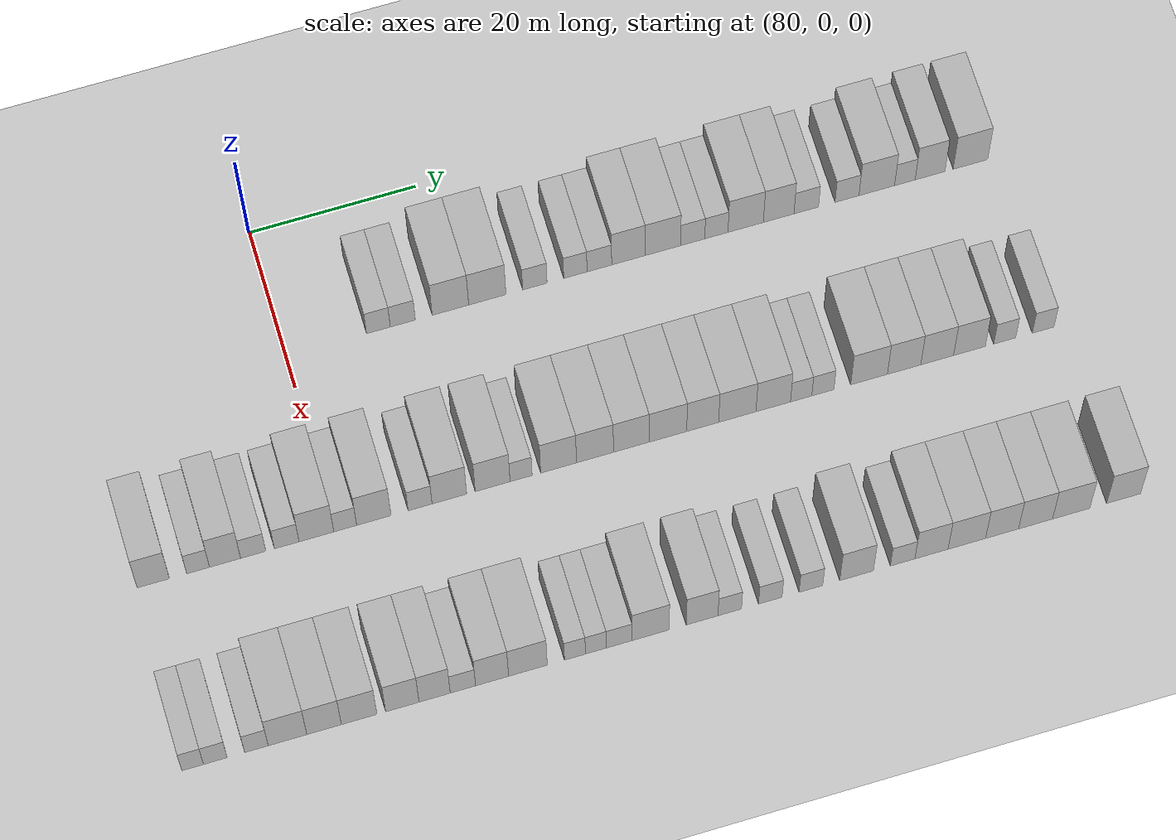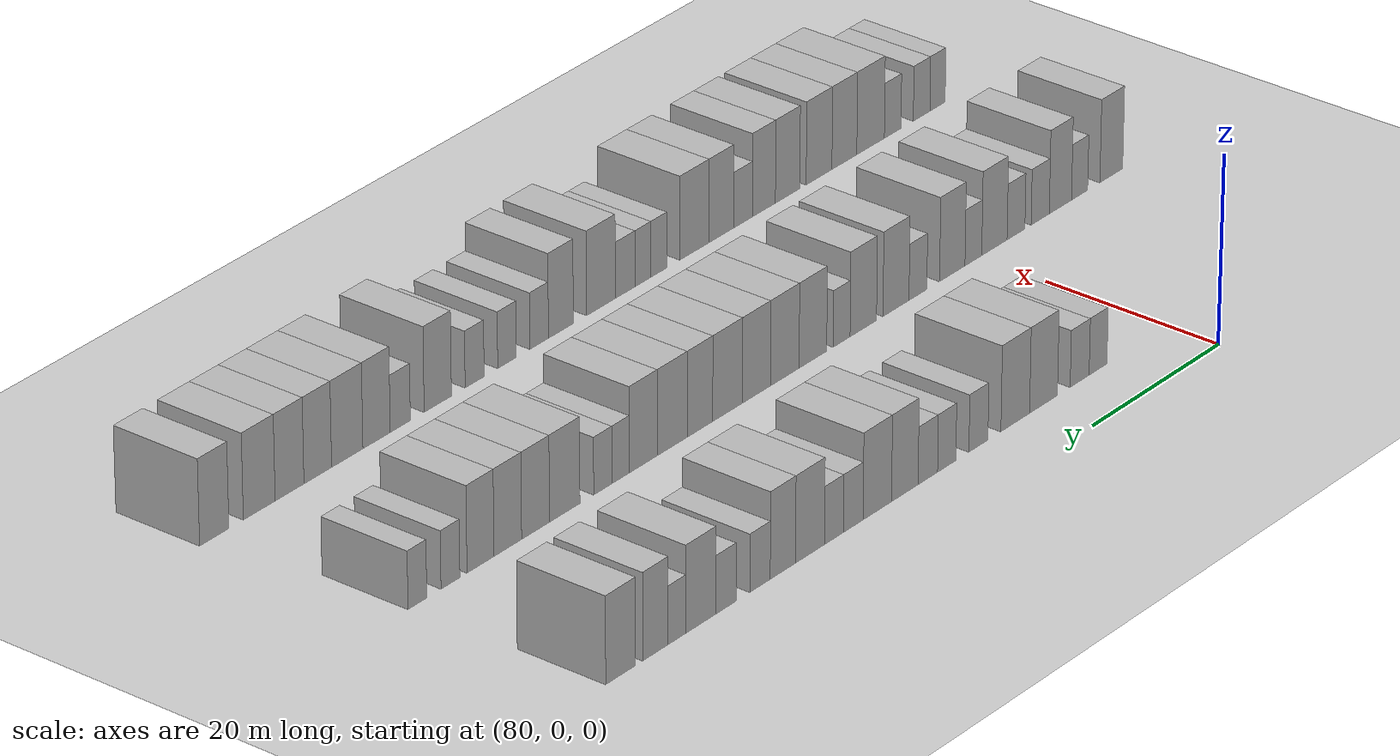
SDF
<sdf version="1.6">
 <world name="default">
  <include>
   <name>ground_plane_2</name>
   <uri>model://HANNAS_ground_plane</uri>
   <pose>100 0 0  0 0 0</pose>
  </include>
  <model name="building_654">
   <static>1</static>
   <pose>91.0000 10.9560 0 0.000000 0.000000 0.000000</pose>
   <link name="link">
    <pose>0 0 3.00 0 0 0</pose>
    <collision name="collision"><geometry><box><size>10.0000 2.8194 6.0000</size></box></geometry></collision>
    <visual name="visual">
     <cast_shadows>0</cast_shadows>
     <geometry><box><size>10.0000 2.8194 6.0000</size></box></geometry>
     <material>
      <script>
       <uri>model://HANNAS_wall/materials/scripts</uri>
       <uri>model://HANNAS_wall/materials/textures</uri>
       <name>vrc/HANNAS_wall</name>
      </script>
     </material>
    </visual>
   </link>
  </model>
  <model name="building_655">
   <static>1</static>
   <pose>91.0000 13.8556 0 0.000000 0.000000 0.000000</pose>
   <link name="link">
    <pose>0 0 3.00 0 0 0</pose>
    <collision name="collision"><geometry><box><size>10.0000 2.9799 6.0000</size></box></geometry></collision>
    <visual name="visual">
     <cast_shadows>0</cast_shadows>
     <geometry><box><size>10.0000 2.9799 6.0000</size></box></geometry>
     <material>
      <script>
       <uri>model://HANNAS_wall/materials/scripts</uri>
       <uri>model://HANNAS_wall/materials/textures</uri>
       <name>vrc/HANNAS_wall</name>
      </script>
     </material>
    </visual>
   </link>
  </model>
  <model name="building_656">
   <static>1</static>
   <pose>91.0000 19.5198 0 0.000000 0.000000 0.000000</pose>
   <link name="link">
    <pose>0 0 4.50 0 0 0</pose>
    <collision name="collision"><geometry><box><size>10.0000 4.3485 9.0000</size></box></geometry></collision>
    <visual name="visual">
     <cast_shadows>0</cast_shadows>
     <geometry><box><size>10.0000 4.3485 9.0000</size></box></geometry>
     <material>
      <script>
       <uri>model://HANNAS_wall/materials/scripts</uri>
       <uri>model://HANNAS_wall/materials/textures</uri>
       <name>vrc/HANNAS_wall</name>
      </script>
     </material>
    </visual>
   </link>
  </model>
  <model name="building_657">
   <static>1</static>
   <pose>91.0000 23.9176 0 0.000000 0.000000 0.000000</pose>
   <link name="link">
    <pose>0 0 4.50 0 0 0</pose>
    <collision name="collision"><geometry><box><size>10.0000 4.4471 9.0000</size></box></geometry></collision>
    <visual name="visual">
     <cast_shadows>0</cast_shadows>
     <geometry><box><size>10.0000 4.4471 9.0000</size></box></geometry>
     <material>
      <script>
       <uri>model://HANNAS_wall/materials/scripts</uri>
       <uri>model://HANNAS_wall/materials/textures</uri>
       <name>vrc/HANNAS_wall</name>
      </script>
     </material>
    </visual>
   </link>
  </model>
  <model name="building_658">
   <static>1</static>
   <pose>91.0000 29.5985 0 0.000000 0.000000 0.000000</pose>
   <link name="link">
    <pose>0 0 3.00 0 0 0</pose>
    <collision name="collision"><geometry><box><size>10.0000 2.9148 6.0000</size></box></geometry></collision>
    <visual name="visual">
     <cast_shadows>0</cast_shadows>
     <geometry><box><size>10.0000 2.9148 6.0000</size></box></geometry>
     <material>
      <script>
       <uri>model://HANNAS_wall/materials/scripts</uri>
       <uri>model://HANNAS_wall/materials/textures</uri>
       <name>vrc/HANNAS_wall</name>
      </script>
     </material>
    </visual>
   </link>
  </model>
  <model name="building_659">
   <static>1</static>
   <pose>91.0000 34.4473 0 0.000000 0.000000 0.000000</pose>
   <link name="link">
    <pose>0 0 3.00 0 0 0</pose>
    <collision name="collision"><geometry><box><size>10.0000 2.7828 6.0000</size></box></geometry></collision>
    <visual name="visual">
     <cast_shadows>0</cast_shadows>
     <geometry><box><size>10.0000 2.7828 6.0000</size></box></geometry>
     <material>
      <script>
       <uri>model://HANNAS_wall/materials/scripts</uri>
       <uri>model://HANNAS_wall/materials/textures</uri>
       <name>vrc/HANNAS_wall</name>
      </script>
     </material>
    </visual>
   </link>
  </model>
  <model name="building_660">
   <static>1</static>
   <pose>91.0000 37.3197 0 0.000000 0.000000 0.000000</pose>
   <link name="link">
    <pose>0 0 3.00 0 0 0</pose>
    <collision name="collision"><geometry><box><size>10.0000 2.9619 6.0000</size></box></geometry></collision>
    <visual name="visual">
     <cast_shadows>0</cast_shadows>
     <geometry><box><size>10.0000 2.9619 6.0000</size></box></geometry>
     <material>
      <script>
       <uri>model://HANNAS_wall/materials/scripts</uri>
       <uri>model://HANNAS_wall/materials/textures</uri>
       <name>vrc/HANNAS_wall</name>
      </script>
     </material>
    </visual>
   </link>
  </model>
  <model name="building_661">
   <static>1</static>
   <pose>91.0000 40.8022 0 0.000000 0.000000 0.000000</pose>
   <link name="link">
    <pose>0 0 4.50 0 0 0</pose>
    <collision name="collision"><geometry><box><size>10.0000 4.0031 9.0000</size></box></geometry></collision>
    <visual name="visual">
     <cast_shadows>0</cast_shadows>
     <geometry><box><size>10.0000 4.0031 9.0000</size></box></geometry>
     <material>
      <script>
       <uri>model://HANNAS_wall/materials/scripts</uri>
       <uri>model://HANNAS_wall/materials/textures</uri>
       <name>vrc/HANNAS_wall</name>
      </script>
     </material>
    </visual>
   </link>
  </model>
  <model name="building_662">
   <static>1</static>
   <pose>91.0000 44.9374 0 0.000000 0.000000 0.000000</pose>
   <link name="link">
    <pose>0 0 4.50 0 0 0</pose>
    <collision name="collision"><geometry><box><size>10.0000 4.2671 9.0000</size></box></geometry></collision>
    <visual name="visual">
     <cast_shadows>0</cast_shadows>
     <geometry><box><size>10.0000 4.2671 9.0000</size></box></geometry>
     <material>
      <script>
       <uri>model://HANNAS_wall/materials/scripts</uri>
       <uri>model://HANNAS_wall/materials/textures</uri>
       <name>vrc/HANNAS_wall</name>
      </script>
     </material>
    </visual>
   </link>
  </model>
  <model name="building_663">
   <static>1</static>
   <pose>91.0000 48.5346 0 0.000000 0.000000 0.000000</pose>
   <link name="link">
    <pose>0 0 3.00 0 0 0</pose>
    <collision name="collision"><geometry><box><size>10.0000 2.9274 6.0000</size></box></geometry></collision>
    <visual name="visual">
     <cast_shadows>0</cast_shadows>
     <geometry><box><size>10.0000 2.9274 6.0000</size></box></geometry>
     <material>
      <script>
       <uri>model://HANNAS_wall/materials/scripts</uri>
       <uri>model://HANNAS_wall/materials/textures</uri>
       <name>vrc/HANNAS_wall</name>
      </script>
     </material>
    </visual>
   </link>
  </model>
  <model name="building_664">
   <static>1</static>
   <pose>91.0000 51.3972 0 0.000000 0.000000 0.000000</pose>
   <link name="link">
    <pose>0 0 3.00 0 0 0</pose>
    <collision name="collision"><geometry><box><size>10.0000 2.7978 6.0000</size></box></geometry></collision>
    <visual name="visual">
     <cast_shadows>0</cast_shadows>
     <geometry><box><size>10.0000 2.7978 6.0000</size></box></geometry>
     <material>
      <script>
       <uri>model://HANNAS_wall/materials/scripts</uri>
       <uri>model://HANNAS_wall/materials/textures</uri>
       <name>vrc/HANNAS_wall</name>
      </script>
     </material>
    </visual>
   </link>
  </model>
  <model name="building_665">
   <static>1</static>
   <pose>91.0000 54.9342 0 0.000000 0.000000 0.000000</pose>
   <link name="link">
    <pose>0 0 4.50 0 0 0</pose>
    <collision name="collision"><geometry><box><size>10.0000 4.2761 9.0000</size></box></geometry></collision>
    <visual name="visual">
     <cast_shadows>0</cast_shadows>
     <geometry><box><size>10.0000 4.2761 9.0000</size></box></geometry>
     <material>
      <script>
       <uri>model://HANNAS_wall/materials/scripts</uri>
       <uri>model://HANNAS_wall/materials/textures</uri>
       <name>vrc/HANNAS_wall</name>
      </script>
     </material>
    </visual>
   </link>
  </model>
  <model name="building_666">
   <static>1</static>
   <pose>91.0000 58.9236 0 0.000000 0.000000 0.000000</pose>
   <link name="link">
    <pose>0 0 4.50 0 0 0</pose>
    <collision name="collision"><geometry><box><size>10.0000 3.7027 9.0000</size></box></geometry></collision>
    <visual name="visual">
     <cast_shadows>0</cast_shadows>
     <geometry><box><size>10.0000 3.7027 9.0000</size></box></geometry>
     <material>
      <script>
       <uri>model://HANNAS_wall/materials/scripts</uri>
       <uri>model://HANNAS_wall/materials/textures</uri>
       <name>vrc/HANNAS_wall</name>
      </script>
     </material>
    </visual>
   </link>
  </model>
  <model name="building_667">
   <static>1</static>
   <pose>91.0000 62.2617 0 0.000000 0.000000 0.000000</pose>
   <link name="link">
    <pose>0 0 3.00 0 0 0</pose>
    <collision name="collision"><geometry><box><size>10.0000 2.9735 6.0000</size></box></geometry></collision>
    <visual name="visual">
     <cast_shadows>0</cast_shadows>
     <geometry><box><size>10.0000 2.9735 6.0000</size></box></geometry>
     <material>
      <script>
       <uri>model://HANNAS_wall/materials/scripts</uri>
       <uri>model://HANNAS_wall/materials/textures</uri>
       <name>vrc/HANNAS_wall</name>
      </script>
     </material>
    </visual>
   </link>
  </model>
  <model name="building_668">
   <static>1</static>
   <pose>91.0000 67.1979 0 0.000000 0.000000 0.000000</pose>
   <link name="link">
    <pose>0 0 3.00 0 0 0</pose>
    <collision name="collision"><geometry><box><size>10.0000 2.8990 6.0000</size></box></geometry></collision>
    <visual name="visual">
     <cast_shadows>0</cast_shadows>
     <geometry><box><size>10.0000 2.8990 6.0000</size></box></geometry>
     <material>
      <script>
       <uri>model://HANNAS_wall/materials/scripts</uri>
       <uri>model://HANNAS_wall/materials/textures</uri>
       <name>vrc/HANNAS_wall</name>
      </script>
     </material>
    </visual>
   </link>
  </model>
  <model name="building_669">
   <static>1</static>
   <pose>91.0000 70.8143 0 0.000000 0.000000 0.000000</pose>
   <link name="link">
    <pose>0 0 4.50 0 0 0</pose>
    <collision name="collision"><geometry><box><size>10.0000 4.3337 9.0000</size></box></geometry></collision>
    <visual name="visual">
     <cast_shadows>0</cast_shadows>
     <geometry><box><size>10.0000 4.3337 9.0000</size></box></geometry>
     <material>
      <script>
       <uri>model://HANNAS_wall/materials/scripts</uri>
       <uri>model://HANNAS_wall/materials/textures</uri>
       <name>vrc/HANNAS_wall</name>
      </script>
     </material>
    </visual>
   </link>
  </model>
  <model name="building_670">
   <static>1</static>
   <pose>91.0000 74.2350 0 0.000000 0.000000 0.000000</pose>
   <link name="link">
    <pose>0 0 3.00 0 0 0</pose>
    <collision name="collision"><geometry><box><size>10.0000 2.5077 6.0000</size></box></geometry></collision>
    <visual name="visual">
     <cast_shadows>0</cast_shadows>
     <geometry><box><size>10.0000 2.5077 6.0000</size></box></geometry>
     <material>
      <script>
       <uri>model://HANNAS_wall/materials/scripts</uri>
       <uri>model://HANNAS_wall/materials/textures</uri>
       <name>vrc/HANNAS_wall</name>
      </script>
     </material>
    </visual>
   </link>
  </model>
  <model name="building_671">
   <static>1</static>
   <pose>91.0000 77.3013 0 0.000000 0.000000 0.000000</pose>
   <link name="link">
    <pose>0 0 4.50 0 0 0</pose>
    <collision name="collision"><geometry><box><size>10.0000 3.6250 9.0000</size></box></geometry></collision>
    <visual name="visual">
     <cast_shadows>0</cast_shadows>
     <geometry><box><size>10.0000 3.6250 9.0000</size></box></geometry>
     <material>
      <script>
       <uri>model://HANNAS_wall/materials/scripts</uri>
       <uri>model://HANNAS_wall/materials/textures</uri>
       <name>vrc/HANNAS_wall</name>
      </script>
     </material>
    </visual>
   </link>
  </model>
  <model name="building_672">
   <static>1</static>
   <pose>91.0000 82.2211 0 0.000000 0.000000 0.000000</pose>
   <link name="link">
    <pose>0 0 4.50 0 0 0</pose>
    <collision name="collision"><geometry><box><size>10.0000 4.2145 9.0000</size></box></geometry></collision>
    <visual name="visual">
     <cast_shadows>0</cast_shadows>
     <geometry><box><size>10.0000 4.2145 9.0000</size></box></geometry>
     <material>
      <script>
       <uri>model://HANNAS_wall/materials/scripts</uri>
       <uri>model://HANNAS_wall/materials/textures</uri>
       <name>vrc/HANNAS_wall</name>
      </script>
     </material>
    </visual>
   </link>
  </model>
  <model name="building_836">
   <static>1</static>
   <pose>113.0000 -21.4664 0 0.000000 0.000000 0.000000</pose>
   <link name="link">
    <pose>0 0 4.50 0 0 0</pose>
    <collision name="collision"><geometry><box><size>10.0000 3.7477 9.0000</size></box></geometry></collision>
    <visual name="visual">
     <cast_shadows>0</cast_shadows>
     <geometry><box><size>10.0000 3.7477 9.0000</size></box></geometry>
     <material>
      <script>
       <uri>model://HANNAS_wall/materials/scripts</uri>
       <uri>model://HANNAS_wall/materials/textures</uri>
       <name>vrc/HANNAS_wall</name>
      </script>
     </material>
    </visual>
   </link>
  </model>
  <model name="building_837">
   <static>1</static>
   <pose>113.0000 -16.2713 0 0.000000 0.000000 0.000000</pose>
   <link name="link">
    <pose>0 0 3.00 0 0 0</pose>
    <collision name="collision"><geometry><box><size>10.0000 2.6425 6.0000</size></box></geometry></collision>
    <visual name="visual">
     <cast_shadows>0</cast_shadows>
     <geometry><box><size>10.0000 2.6425 6.0000</size></box></geometry>
     <material>
      <script>
       <uri>model://HANNAS_wall/materials/scripts</uri>
       <uri>model://HANNAS_wall/materials/textures</uri>
       <name>vrc/HANNAS_wall</name>
      </script>
     </material>
    </visual>
   </link>
  </model>
  <model name="building_838">
   <static>1</static>
   <pose>113.0000 -13.1436 0 0.000000 0.000000 0.000000</pose>
   <link name="link">
    <pose>0 0 4.50 0 0 0</pose>
    <collision name="collision"><geometry><box><size>10.0000 3.6130 9.0000</size></box></geometry></collision>
    <visual name="visual">
     <cast_shadows>0</cast_shadows>
     <geometry><box><size>10.0000 3.6130 9.0000</size></box></geometry>
     <material>
      <script>
       <uri>model://HANNAS_wall/materials/scripts</uri>
       <uri>model://HANNAS_wall/materials/textures</uri>
       <name>vrc/HANNAS_wall</name>
      </script>
     </material>
    </visual>
   </link>
  </model>
  <model name="building_839">
   <static>1</static>
   <pose>113.0000 -9.8692 0 0.000000 0.000000 0.000000</pose>
   <link name="link">
    <pose>0 0 3.00 0 0 0</pose>
    <collision name="collision"><geometry><box><size>10.0000 2.9358 6.0000</size></box></geometry></collision>
    <visual name="visual">
     <cast_shadows>0</cast_shadows>
     <geometry><box><size>10.0000 2.9358 6.0000</size></box></geometry>
     <material>
      <script>
       <uri>model://HANNAS_wall/materials/scripts</uri>
       <uri>model://HANNAS_wall/materials/textures</uri>
       <name>vrc/HANNAS_wall</name>
      </script>
     </material>
    </visual>
   </link>
  </model>
  <model name="building_840">
   <static>1</static>
   <pose>113.0000 -5.9664 0 0.000000 0.000000 0.000000</pose>
   <link name="link">
    <pose>0 0 3.00 0 0 0</pose>
    <collision name="collision"><geometry><box><size>10.0000 2.8697 6.0000</size></box></geometry></collision>
    <visual name="visual">
     <cast_shadows>0</cast_shadows>
     <geometry><box><size>10.0000 2.8697 6.0000</size></box></geometry>
     <material>
      <script>
       <uri>model://HANNAS_wall/materials/scripts</uri>
       <uri>model://HANNAS_wall/materials/textures</uri>
       <name>vrc/HANNAS_wall</name>
      </script>
     </material>
    </visual>
   </link>
  </model>
  <model name="building_841">
   <static>1</static>
   <pose>113.0000 -2.5045 0 0.000000 0.000000 0.000000</pose>
   <link name="link">
    <pose>0 0 4.50 0 0 0</pose>
    <collision name="collision"><geometry><box><size>10.0000 4.0541 9.0000</size></box></geometry></collision>
    <visual name="visual">
     <cast_shadows>0</cast_shadows>
     <geometry><box><size>10.0000 4.0541 9.0000</size></box></geometry>
     <material>
      <script>
       <uri>model://HANNAS_wall/materials/scripts</uri>
       <uri>model://HANNAS_wall/materials/textures</uri>
       <name>vrc/HANNAS_wall</name>
      </script>
     </material>
    </visual>
   </link>
  </model>
  <model name="building_842">
   <static>1</static>
   <pose>113.0000 0.8556 0 0.000000 0.000000 0.000000</pose>
   <link name="link">
    <pose>0 0 3.00 0 0 0</pose>
    <collision name="collision"><geometry><box><size>10.0000 2.6663 6.0000</size></box></geometry></collision>
    <visual name="visual">
     <cast_shadows>0</cast_shadows>
     <geometry><box><size>10.0000 2.6663 6.0000</size></box></geometry>
     <material>
      <script>
       <uri>model://HANNAS_wall/materials/scripts</uri>
       <uri>model://HANNAS_wall/materials/textures</uri>
       <name>vrc/HANNAS_wall</name>
      </script>
     </material>
    </visual>
   </link>
  </model>
  <model name="building_843">
   <static>1</static>
   <pose>113.0000 4.2012 0 0.000000 0.000000 0.000000</pose>
   <link name="link">
    <pose>0 0 4.50 0 0 0</pose>
    <collision name="collision"><geometry><box><size>10.0000 4.0248 9.0000</size></box></geometry></collision>
    <visual name="visual">
     <cast_shadows>0</cast_shadows>
     <geometry><box><size>10.0000 4.0248 9.0000</size></box></geometry>
     <material>
      <script>
       <uri>model://HANNAS_wall/materials/scripts</uri>
       <uri>model://HANNAS_wall/materials/textures</uri>
       <name>vrc/HANNAS_wall</name>
      </script>
     </material>
    </visual>
   </link>
  </model>
  <model name="building_844">
   <static>1</static>
   <pose>113.0000 9.6167 0 0.000000 0.000000 0.000000</pose>
   <link name="link">
    <pose>0 0 3.00 0 0 0</pose>
    <collision name="collision"><geometry><box><size>10.0000 2.8062 6.0000</size></box></geometry></collision>
    <visual name="visual">
     <cast_shadows>0</cast_shadows>
     <geometry><box><size>10.0000 2.8062 6.0000</size></box></geometry>
     <material>
      <script>
       <uri>model://HANNAS_wall/materials/scripts</uri>
       <uri>model://HANNAS_wall/materials/textures</uri>
       <name>vrc/HANNAS_wall</name>
      </script>
     </material>
    </visual>
   </link>
  </model>
  <model name="building_845">
   <static>1</static>
   <pose>113.0000 13.0514 0 0.000000 0.000000 0.000000</pose>
   <link name="link">
    <pose>0 0 4.50 0 0 0</pose>
    <collision name="collision"><geometry><box><size>10.0000 4.0631 9.0000</size></box></geometry></collision>
    <visual name="visual">
     <cast_shadows>0</cast_shadows>
     <geometry><box><size>10.0000 4.0631 9.0000</size></box></geometry>
     <material>
      <script>
       <uri>model://HANNAS_wall/materials/scripts</uri>
       <uri>model://HANNAS_wall/materials/textures</uri>
       <name>vrc/HANNAS_wall</name>
      </script>
     </material>
    </visual>
   </link>
  </model>
  <model name="building_846">
   <static>1</static>
   <pose>113.0000 18.1331 0 0.000000 0.000000 0.000000</pose>
   <link name="link">
    <pose>0 0 4.50 0 0 0</pose>
    <collision name="collision"><geometry><box><size>10.0000 4.1003 9.0000</size></box></geometry></collision>
    <visual name="visual">
     <cast_shadows>0</cast_shadows>
     <geometry><box><size>10.0000 4.1003 9.0000</size></box></geometry>
     <material>
      <script>
       <uri>model://HANNAS_wall/materials/scripts</uri>
       <uri>model://HANNAS_wall/materials/textures</uri>
       <name>vrc/HANNAS_wall</name>
      </script>
     </material>
    </visual>
   </link>
  </model>
  <model name="building_847">
   <static>1</static>
   <pose>113.0000 21.4823 0 0.000000 0.000000 0.000000</pose>
   <link name="link">
    <pose>0 0 3.00 0 0 0</pose>
    <collision name="collision"><geometry><box><size>10.0000 2.5981 6.0000</size></box></geometry></collision>
    <visual name="visual">
     <cast_shadows>0</cast_shadows>
     <geometry><box><size>10.0000 2.5981 6.0000</size></box></geometry>
     <material>
      <script>
       <uri>model://HANNAS_wall/materials/scripts</uri>
       <uri>model://HANNAS_wall/materials/textures</uri>
       <name>vrc/HANNAS_wall</name>
      </script>
     </material>
    </visual>
   </link>
  </model>
  <model name="building_848">
   <static>1</static>
   <pose>113.0000 25.8924 0 0.000000 0.000000 0.000000</pose>
   <link name="link">
    <pose>0 0 4.50 0 0 0</pose>
    <collision name="collision"><geometry><box><size>10.0000 4.2222 9.0000</size></box></geometry></collision>
    <visual name="visual">
     <cast_shadows>0</cast_shadows>
     <geometry><box><size>10.0000 4.2222 9.0000</size></box></geometry>
     <material>
      <script>
       <uri>model://HANNAS_wall/materials/scripts</uri>
       <uri>model://HANNAS_wall/materials/textures</uri>
       <name>vrc/HANNAS_wall</name>
      </script>
     </material>
    </visual>
   </link>
  </model>
  <model name="building_849">
   <static>1</static>
   <pose>113.0000 30.1855 0 0.000000 0.000000 0.000000</pose>
   <link name="link">
    <pose>0 0 4.50 0 0 0</pose>
    <collision name="collision"><geometry><box><size>10.0000 4.3639 9.0000</size></box></geometry></collision>
    <visual name="visual">
     <cast_shadows>0</cast_shadows>
     <geometry><box><size>10.0000 4.3639 9.0000</size></box></geometry>
     <material>
      <script>
       <uri>model://HANNAS_wall/materials/scripts</uri>
       <uri>model://HANNAS_wall/materials/textures</uri>
       <name>vrc/HANNAS_wall</name>
      </script>
     </material>
    </visual>
   </link>
  </model>
  <model name="building_850">
   <static>1</static>
   <pose>113.0000 34.4704 0 0.000000 0.000000 0.000000</pose>
   <link name="link">
    <pose>0 0 4.50 0 0 0</pose>
    <collision name="collision"><geometry><box><size>10.0000 4.2058 9.0000</size></box></geometry></collision>
    <visual name="visual">
     <cast_shadows>0</cast_shadows>
     <geometry><box><size>10.0000 4.2058 9.0000</size></box></geometry>
     <material>
      <script>
       <uri>model://HANNAS_wall/materials/scripts</uri>
       <uri>model://HANNAS_wall/materials/textures</uri>
       <name>vrc/HANNAS_wall</name>
      </script>
     </material>
    </visual>
   </link>
  </model>
  <model name="building_851">
   <static>1</static>
   <pose>113.0000 38.8074 0 0.000000 0.000000 0.000000</pose>
   <link name="link">
    <pose>0 0 4.50 0 0 0</pose>
    <collision name="collision"><geometry><box><size>10.0000 4.4682 9.0000</size></box></geometry></collision>
    <visual name="visual">
     <cast_shadows>0</cast_shadows>
     <geometry><box><size>10.0000 4.4682 9.0000</size></box></geometry>
     <material>
      <script>
       <uri>model://HANNAS_wall/materials/scripts</uri>
       <uri>model://HANNAS_wall/materials/textures</uri>
       <name>vrc/HANNAS_wall</name>
      </script>
     </material>
    </visual>
   </link>
  </model>
  <model name="building_852">
   <static>1</static>
   <pose>113.0000 42.9378 0 0.000000 0.000000 0.000000</pose>
   <link name="link">
    <pose>0 0 4.50 0 0 0</pose>
    <collision name="collision"><geometry><box><size>10.0000 3.7927 9.0000</size></box></geometry></collision>
    <visual name="visual">
     <cast_shadows>0</cast_shadows>
     <geometry><box><size>10.0000 3.7927 9.0000</size></box></geometry>
     <material>
      <script>
       <uri>model://HANNAS_wall/materials/scripts</uri>
       <uri>model://HANNAS_wall/materials/textures</uri>
       <name>vrc/HANNAS_wall</name>
      </script>
     </material>
    </visual>
   </link>
  </model>
  <model name="building_853">
   <static>1</static>
   <pose>113.0000 47.0565 0 0.000000 0.000000 0.000000</pose>
   <link name="link">
    <pose>0 0 4.50 0 0 0</pose>
    <collision name="collision"><geometry><box><size>10.0000 4.4446 9.0000</size></box></geometry></collision>
    <visual name="visual">
     <cast_shadows>0</cast_shadows>
     <geometry><box><size>10.0000 4.4446 9.0000</size></box></geometry>
     <material>
      <script>
       <uri>model://HANNAS_wall/materials/scripts</uri>
       <uri>model://HANNAS_wall/materials/textures</uri>
       <name>vrc/HANNAS_wall</name>
      </script>
     </material>
    </visual>
   </link>
  </model>
  <model name="building_854">
   <static>1</static>
   <pose>113.0000 51.3348 0 0.000000 0.000000 0.000000</pose>
   <link name="link">
    <pose>0 0 4.50 0 0 0</pose>
    <collision name="collision"><geometry><box><size>10.0000 4.1121 9.0000</size></box></geometry></collision>
    <visual name="visual">
     <cast_shadows>0</cast_shadows>
     <geometry><box><size>10.0000 4.1121 9.0000</size></box></geometry>
     <material>
      <script>
       <uri>model://HANNAS_wall/materials/scripts</uri>
       <uri>model://HANNAS_wall/materials/textures</uri>
       <name>vrc/HANNAS_wall</name>
      </script>
     </material>
    </visual>
   </link>
  </model>
  <model name="building_855">
   <static>1</static>
   <pose>113.0000 54.6623 0 0.000000 0.000000 0.000000</pose>
   <link name="link">
    <pose>0 0 3.00 0 0 0</pose>
    <collision name="collision"><geometry><box><size>10.0000 2.5429 6.0000</size></box></geometry></collision>
    <visual name="visual">
     <cast_shadows>0</cast_shadows>
     <geometry><box><size>10.0000 2.5429 6.0000</size></box></geometry>
     <material>
      <script>
       <uri>model://HANNAS_wall/materials/scripts</uri>
       <uri>model://HANNAS_wall/materials/textures</uri>
       <name>vrc/HANNAS_wall</name>
      </script>
     </material>
    </visual>
   </link>
  </model>
  <model name="building_856">
   <static>1</static>
   <pose>113.0000 57.2573 0 0.000000 0.000000 0.000000</pose>
   <link name="link">
    <pose>0 0 3.00 0 0 0</pose>
    <collision name="collision"><geometry><box><size>10.0000 2.6470 6.0000</size></box></geometry></collision>
    <visual name="visual">
     <cast_shadows>0</cast_shadows>
     <geometry><box><size>10.0000 2.6470 6.0000</size></box></geometry>
     <material>
      <script>
       <uri>model://HANNAS_wall/materials/scripts</uri>
       <uri>model://HANNAS_wall/materials/textures</uri>
       <name>vrc/HANNAS_wall</name>
      </script>
     </material>
    </visual>
   </link>
  </model>
  <model name="building_857">
   <static>1</static>
   <pose>113.0000 62.7747 0 0.000000 0.000000 0.000000</pose>
   <link name="link">
    <pose>0 0 4.50 0 0 0</pose>
    <collision name="collision"><geometry><box><size>10.0000 4.3878 9.0000</size></box></geometry></collision>
    <visual name="visual">
     <cast_shadows>0</cast_shadows>
     <geometry><box><size>10.0000 4.3878 9.0000</size></box></geometry>
     <material>
      <script>
       <uri>model://HANNAS_wall/materials/scripts</uri>
       <uri>model://HANNAS_wall/materials/textures</uri>
       <name>vrc/HANNAS_wall</name>
      </script>
     </material>
    </visual>
   </link>
  </model>
  <model name="building_858">
   <static>1</static>
   <pose>113.0000 66.9671 0 0.000000 0.000000 0.000000</pose>
   <link name="link">
    <pose>0 0 4.50 0 0 0</pose>
    <collision name="collision"><geometry><box><size>10.0000 3.9969 9.0000</size></box></geometry></collision>
    <visual name="visual">
     <cast_shadows>0</cast_shadows>
     <geometry><box><size>10.0000 3.9969 9.0000</size></box></geometry>
     <material>
      <script>
       <uri>model://HANNAS_wall/materials/scripts</uri>
       <uri>model://HANNAS_wall/materials/textures</uri>
       <name>vrc/HANNAS_wall</name>
      </script>
     </material>
    </visual>
   </link>
  </model>
  <model name="building_859">
   <static>1</static>
   <pose>113.0000 70.9345 0 0.000000 0.000000 0.000000</pose>
   <link name="link">
    <pose>0 0 4.50 0 0 0</pose>
    <collision name="collision"><geometry><box><size>10.0000 3.9379 9.0000</size></box></geometry></collision>
    <visual name="visual">
     <cast_shadows>0</cast_shadows>
     <geometry><box><size>10.0000 3.9379 9.0000</size></box></geometry>
     <material>
      <script>
       <uri>model://HANNAS_wall/materials/scripts</uri>
       <uri>model://HANNAS_wall/materials/textures</uri>
       <name>vrc/HANNAS_wall</name>
      </script>
     </material>
    </visual>
   </link>
  </model>
  <model name="building_860">
   <static>1</static>
   <pose>113.0000 74.8134 0 0.000000 0.000000 0.000000</pose>
   <link name="link">
    <pose>0 0 4.50 0 0 0</pose>
    <collision name="collision"><geometry><box><size>10.0000 3.8198 9.0000</size></box></geometry></collision>
    <visual name="visual">
     <cast_shadows>0</cast_shadows>
     <geometry><box><size>10.0000 3.8198 9.0000</size></box></geometry>
     <material>
      <script>
       <uri>model://HANNAS_wall/materials/scripts</uri>
       <uri>model://HANNAS_wall/materials/textures</uri>
       <name>vrc/HANNAS_wall</name>
      </script>
     </material>
    </visual>
   </link>
  </model>
  <model name="building_861">
   <static>1</static>
   <pose>113.0000 79.0481 0 0.000000 0.000000 0.000000</pose>
   <link name="link">
    <pose>0 0 3.00 0 0 0</pose>
    <collision name="collision"><geometry><box><size>10.0000 2.6496 6.0000</size></box></geometry></collision>
    <visual name="visual">
     <cast_shadows>0</cast_shadows>
     <geometry><box><size>10.0000 2.6496 6.0000</size></box></geometry>
     <material>
      <script>
       <uri>model://HANNAS_wall/materials/scripts</uri>
       <uri>model://HANNAS_wall/materials/textures</uri>
       <name>vrc/HANNAS_wall</name>
      </script>
     </material>
    </visual>
   </link>
  </model>
  <model name="building_862">
   <static>1</static>
   <pose>113.0000 83.6814 0 0.000000 0.000000 0.000000</pose>
   <link name="link">
    <pose>0 0 3.00 0 0 0</pose>
    <collision name="collision"><geometry><box><size>10.0000 2.6170 6.0000</size></box></geometry></collision>
    <visual name="visual">
     <cast_shadows>0</cast_shadows>
     <geometry><box><size>10.0000 2.6170 6.0000</size></box></geometry>
     <material>
      <script>
       <uri>model://HANNAS_wall/materials/scripts</uri>
       <uri>model://HANNAS_wall/materials/textures</uri>
       <name>vrc/HANNAS_wall</name>
      </script>
     </material>
    </visual>
   </link>
  </model>
  <model name="building_1012">
   <static>1</static>
   <pose>135.0000 -22.7860 0 0.000000 0.000000 0.000000</pose>
   <link name="link">
    <pose>0 0 3.00 0 0 0</pose>
    <collision name="collision"><geometry><box><size>10.0000 2.4742 6.0000</size></box></geometry></collision>
    <visual name="visual">
     <cast_shadows>0</cast_shadows>
     <geometry><box><size>10.0000 2.4742 6.0000</size></box></geometry>
     <material>
      <script>
       <uri>model://HANNAS_wall/materials/scripts</uri>
       <uri>model://HANNAS_wall/materials/textures</uri>
       <name>vrc/HANNAS_wall</name>
      </script>
     </material>
    </visual>
   </link>
  </model>
  <model name="building_1013">
   <static>1</static>
   <pose>135.0000 -20.1938 0 0.000000 0.000000 0.000000</pose>
   <link name="link">
    <pose>0 0 3.00 0 0 0</pose>
    <collision name="collision"><geometry><box><size>10.0000 2.7102 6.0000</size></box></geometry></collision>
    <visual name="visual">
     <cast_shadows>0</cast_shadows>
     <geometry><box><size>10.0000 2.7102 6.0000</size></box></geometry>
     <material>
      <script>
       <uri>model://HANNAS_wall/materials/scripts</uri>
       <uri>model://HANNAS_wall/materials/textures</uri>
       <name>vrc/HANNAS_wall</name>
      </script>
     </material>
    </visual>
   </link>
  </model>
  <model name="building_1014">
   <static>1</static>
   <pose>135.0000 -15.4945 0 0.000000 0.000000 0.000000</pose>
   <link name="link">
    <pose>0 0 3.00 0 0 0</pose>
    <collision name="collision"><geometry><box><size>10.0000 2.6884 6.0000</size></box></geometry></collision>
    <visual name="visual">
     <cast_shadows>0</cast_shadows>
     <geometry><box><size>10.0000 2.6884 6.0000</size></box></geometry>
     <material>
      <script>
       <uri>model://HANNAS_wall/materials/scripts</uri>
       <uri>model://HANNAS_wall/materials/textures</uri>
       <name>vrc/HANNAS_wall</name>
      </script>
     </material>
    </visual>
   </link>
  </model>
  <model name="building_1015">
   <static>1</static>
   <pose>135.0000 -11.9331 0 0.000000 0.000000 0.000000</pose>
   <link name="link">
    <pose>0 0 4.50 0 0 0</pose>
    <collision name="collision"><geometry><box><size>10.0000 4.4343 9.0000</size></box></geometry></collision>
    <visual name="visual">
     <cast_shadows>0</cast_shadows>
     <geometry><box><size>10.0000 4.4343 9.0000</size></box></geometry>
     <material>
      <script>
       <uri>model://HANNAS_wall/materials/scripts</uri>
       <uri>model://HANNAS_wall/materials/textures</uri>
       <name>vrc/HANNAS_wall</name>
      </script>
     </material>
    </visual>
   </link>
  </model>
  <model name="building_1016">
   <static>1</static>
   <pose>135.0000 -7.7282 0 0.000000 0.000000 0.000000</pose>
   <link name="link">
    <pose>0 0 4.50 0 0 0</pose>
    <collision name="collision"><geometry><box><size>10.0000 3.9754 9.0000</size></box></geometry></collision>
    <visual name="visual">
     <cast_shadows>0</cast_shadows>
     <geometry><box><size>10.0000 3.9754 9.0000</size></box></geometry>
     <material>
      <script>
       <uri>model://HANNAS_wall/materials/scripts</uri>
       <uri>model://HANNAS_wall/materials/textures</uri>
       <name>vrc/HANNAS_wall</name>
      </script>
     </material>
    </visual>
   </link>
  </model>
  <model name="building_1017">
   <static>1</static>
   <pose>135.0000 -3.6944 0 0.000000 0.000000 0.000000</pose>
   <link name="link">
    <pose>0 0 4.50 0 0 0</pose>
    <collision name="collision"><geometry><box><size>10.0000 4.0922 9.0000</size></box></geometry></collision>
    <visual name="visual">
     <cast_shadows>0</cast_shadows>
     <geometry><box><size>10.0000 4.0922 9.0000</size></box></geometry>
     <material>
      <script>
       <uri>model://HANNAS_wall/materials/scripts</uri>
       <uri>model://HANNAS_wall/materials/textures</uri>
       <name>vrc/HANNAS_wall</name>
      </script>
     </material>
    </visual>
   </link>
  </model>
  <model name="building_1018">
   <static>1</static>
   <pose>135.0000 1.2771 0 0.000000 0.000000 0.000000</pose>
   <link name="link">
    <pose>0 0 4.50 0 0 0</pose>
    <collision name="collision"><geometry><box><size>10.0000 3.8508 9.0000</size></box></geometry></collision>
    <visual name="visual">
     <cast_shadows>0</cast_shadows>
     <geometry><box><size>10.0000 3.8508 9.0000</size></box></geometry>
     <material>
      <script>
       <uri>model://HANNAS_wall/materials/scripts</uri>
       <uri>model://HANNAS_wall/materials/textures</uri>
       <name>vrc/HANNAS_wall</name>
      </script>
     </material>
    </visual>
   </link>
  </model>
  <model name="building_1019">
   <static>1</static>
   <pose>135.0000 5.0062 0 0.000000 0.000000 0.000000</pose>
   <link name="link">
    <pose>0 0 4.50 0 0 0</pose>
    <collision name="collision"><geometry><box><size>10.0000 3.6073 9.0000</size></box></geometry></collision>
    <visual name="visual">
     <cast_shadows>0</cast_shadows>
     <geometry><box><size>10.0000 3.6073 9.0000</size></box></geometry>
     <material>
      <script>
       <uri>model://HANNAS_wall/materials/scripts</uri>
       <uri>model://HANNAS_wall/materials/textures</uri>
       <name>vrc/HANNAS_wall</name>
      </script>
     </material>
    </visual>
   </link>
  </model>
  <model name="building_1020">
   <static>1</static>
   <pose>135.0000 8.2727 0 0.000000 0.000000 0.000000</pose>
   <link name="link">
    <pose>0 0 3.00 0 0 0</pose>
    <collision name="collision"><geometry><box><size>10.0000 2.9258 6.0000</size></box></geometry></collision>
    <visual name="visual">
     <cast_shadows>0</cast_shadows>
     <geometry><box><size>10.0000 2.9258 6.0000</size></box></geometry>
     <material>
      <script>
       <uri>model://HANNAS_wall/materials/scripts</uri>
       <uri>model://HANNAS_wall/materials/textures</uri>
       <name>vrc/HANNAS_wall</name>
      </script>
     </material>
    </visual>
   </link>
  </model>
  <model name="building_1021">
   <static>1</static>
   <pose>135.0000 11.6476 0 0.000000 0.000000 0.000000</pose>
   <link name="link">
    <pose>0 0 4.50 0 0 0</pose>
    <collision name="collision"><geometry><box><size>10.0000 3.8239 9.0000</size></box></geometry></collision>
    <visual name="visual">
     <cast_shadows>0</cast_shadows>
     <geometry><box><size>10.0000 3.8239 9.0000</size></box></geometry>
     <material>
      <script>
       <uri>model://HANNAS_wall/materials/scripts</uri>
       <uri>model://HANNAS_wall/materials/textures</uri>
       <name>vrc/HANNAS_wall</name>
      </script>
     </material>
    </visual>
   </link>
  </model>
  <model name="building_1022">
   <static>1</static>
   <pose>135.0000 15.7999 0 0.000000 0.000000 0.000000</pose>
   <link name="link">
    <pose>0 0 4.50 0 0 0</pose>
    <collision name="collision"><geometry><box><size>10.0000 4.4808 9.0000</size></box></geometry></collision>
    <visual name="visual">
     <cast_shadows>0</cast_shadows>
     <geometry><box><size>10.0000 4.4808 9.0000</size></box></geometry>
     <material>
      <script>
       <uri>model://HANNAS_wall/materials/scripts</uri>
       <uri>model://HANNAS_wall/materials/textures</uri>
       <name>vrc/HANNAS_wall</name>
      </script>
     </material>
    </visual>
   </link>
  </model>
  <model name="building_1023">
   <static>1</static>
   <pose>135.0000 21.2555 0 0.000000 0.000000 0.000000</pose>
   <link name="link">
    <pose>0 0 3.00 0 0 0</pose>
    <collision name="collision"><geometry><box><size>10.0000 2.4303 6.0000</size></box></geometry></collision>
    <visual name="visual">
     <cast_shadows>0</cast_shadows>
     <geometry><box><size>10.0000 2.4303 6.0000</size></box></geometry>
     <material>
      <script>
       <uri>model://HANNAS_wall/materials/scripts</uri>
       <uri>model://HANNAS_wall/materials/textures</uri>
       <name>vrc/HANNAS_wall</name>
      </script>
     </material>
    </visual>
   </link>
  </model>
  <model name="building_1024">
   <static>1</static>
   <pose>135.0000 23.6804 0 0.000000 0.000000 0.000000</pose>
   <link name="link">
    <pose>0 0 3.00 0 0 0</pose>
    <collision name="collision"><geometry><box><size>10.0000 2.4195 6.0000</size></box></geometry></collision>
    <visual name="visual">
     <cast_shadows>0</cast_shadows>
     <geometry><box><size>10.0000 2.4195 6.0000</size></box></geometry>
     <material>
      <script>
       <uri>model://HANNAS_wall/materials/scripts</uri>
       <uri>model://HANNAS_wall/materials/textures</uri>
       <name>vrc/HANNAS_wall</name>
      </script>
     </material>
    </visual>
   </link>
  </model>
  <model name="building_1025">
   <static>1</static>
   <pose>135.0000 26.3889 0 0.000000 0.000000 0.000000</pose>
   <link name="link">
    <pose>0 0 3.00 0 0 0</pose>
    <collision name="collision"><geometry><box><size>10.0000 2.9974 6.0000</size></box></geometry></collision>
    <visual name="visual">
     <cast_shadows>0</cast_shadows>
     <geometry><box><size>10.0000 2.9974 6.0000</size></box></geometry>
     <material>
      <script>
       <uri>model://HANNAS_wall/materials/scripts</uri>
       <uri>model://HANNAS_wall/materials/textures</uri>
       <name>vrc/HANNAS_wall</name>
      </script>
     </material>
    </visual>
   </link>
  </model>
  <model name="building_1026">
   <static>1</static>
   <pose>135.0000 30.0514 0 0.000000 0.000000 0.000000</pose>
   <link name="link">
    <pose>0 0 4.50 0 0 0</pose>
    <collision name="collision"><geometry><box><size>10.0000 4.3277 9.0000</size></box></geometry></collision>
    <visual name="visual">
     <cast_shadows>0</cast_shadows>
     <geometry><box><size>10.0000 4.3277 9.0000</size></box></geometry>
     <material>
      <script>
       <uri>model://HANNAS_wall/materials/scripts</uri>
       <uri>model://HANNAS_wall/materials/textures</uri>
       <name>vrc/HANNAS_wall</name>
      </script>
     </material>
    </visual>
   </link>
  </model>
  <model name="building_1027">
   <static>1</static>
   <pose>135.0000 36.0726 0 0.000000 0.000000 0.000000</pose>
   <link name="link">
    <pose>0 0 4.50 0 0 0</pose>
    <collision name="collision"><geometry><box><size>10.0000 3.7148 9.0000</size></box></geometry></collision>
    <visual name="visual">
     <cast_shadows>0</cast_shadows>
     <geometry><box><size>10.0000 3.7148 9.0000</size></box></geometry>
     <material>
      <script>
       <uri>model://HANNAS_wall/materials/scripts</uri>
       <uri>model://HANNAS_wall/materials/textures</uri>
       <name>vrc/HANNAS_wall</name>
      </script>
     </material>
    </visual>
   </link>
  </model>
  <model name="building_1028">
   <static>1</static>
   <pose>135.0000 39.3070 0 0.000000 0.000000 0.000000</pose>
   <link name="link">
    <pose>0 0 3.00 0 0 0</pose>
    <collision name="collision"><geometry><box><size>10.0000 2.7539 6.0000</size></box></geometry></collision>
    <visual name="visual">
     <cast_shadows>0</cast_shadows>
     <geometry><box><size>10.0000 2.7539 6.0000</size></box></geometry>
     <material>
      <script>
       <uri>model://HANNAS_wall/materials/scripts</uri>
       <uri>model://HANNAS_wall/materials/textures</uri>
       <name>vrc/HANNAS_wall</name>
      </script>
     </material>
    </visual>
   </link>
  </model>
  <model name="building_1029">
   <static>1</static>
   <pose>135.0000 44.0614 0 0.000000 0.000000 0.000000</pose>
   <link name="link">
    <pose>0 0 3.00 0 0 0</pose>
    <collision name="collision"><geometry><box><size>10.0000 2.7550 6.0000</size></box></geometry></collision>
    <visual name="visual">
     <cast_shadows>0</cast_shadows>
     <geometry><box><size>10.0000 2.7550 6.0000</size></box></geometry>
     <material>
      <script>
       <uri>model://HANNAS_wall/materials/scripts</uri>
       <uri>model://HANNAS_wall/materials/textures</uri>
       <name>vrc/HANNAS_wall</name>
      </script>
     </material>
    </visual>
   </link>
  </model>
  <model name="building_1030">
   <static>1</static>
   <pose>135.0000 48.8277 0 0.000000 0.000000 0.000000</pose>
   <link name="link">
    <pose>0 0 3.00 0 0 0</pose>
    <collision name="collision"><geometry><box><size>10.0000 2.7776 6.0000</size></box></geometry></collision>
    <visual name="visual">
     <cast_shadows>0</cast_shadows>
     <geometry><box><size>10.0000 2.7776 6.0000</size></box></geometry>
     <material>
      <script>
       <uri>model://HANNAS_wall/materials/scripts</uri>
       <uri>model://HANNAS_wall/materials/textures</uri>
       <name>vrc/HANNAS_wall</name>
      </script>
     </material>
    </visual>
   </link>
  </model>
  <model name="building_1031">
   <static>1</static>
   <pose>135.0000 54.1965 0 0.000000 0.000000 0.000000</pose>
   <link name="link">
    <pose>0 0 4.50 0 0 0</pose>
    <collision name="collision"><geometry><box><size>10.0000 3.9598 9.0000</size></box></geometry></collision>
    <visual name="visual">
     <cast_shadows>0</cast_shadows>
     <geometry><box><size>10.0000 3.9598 9.0000</size></box></geometry>
     <material>
      <script>
       <uri>model://HANNAS_wall/materials/scripts</uri>
       <uri>model://HANNAS_wall/materials/textures</uri>
       <name>vrc/HANNAS_wall</name>
      </script>
     </material>
    </visual>
   </link>
  </model>
  <model name="building_1032">
   <static>1</static>
   <pose>135.0000 59.6215 0 0.000000 0.000000 0.000000</pose>
   <link name="link">
    <pose>0 0 3.00 0 0 0</pose>
    <collision name="collision"><geometry><box><size>10.0000 2.8903 6.0000</size></box></geometry></collision>
    <visual name="visual">
     <cast_shadows>0</cast_shadows>
     <geometry><box><size>10.0000 2.8903 6.0000</size></box></geometry>
     <material>
      <script>
       <uri>model://HANNAS_wall/materials/scripts</uri>
       <uri>model://HANNAS_wall/materials/textures</uri>
       <name>vrc/HANNAS_wall</name>
      </script>
     </material>
    </visual>
   </link>
  </model>
  <model name="building_1033">
   <static>1</static>
   <pose>135.0000 63.0238 0 0.000000 0.000000 0.000000</pose>
   <link name="link">
    <pose>0 0 4.50 0 0 0</pose>
    <collision name="collision"><geometry><box><size>10.0000 3.9143 9.0000</size></box></geometry></collision>
    <visual name="visual">
     <cast_shadows>0</cast_shadows>
     <geometry><box><size>10.0000 3.9143 9.0000</size></box></geometry>
     <material>
      <script>
       <uri>model://HANNAS_wall/materials/scripts</uri>
       <uri>model://HANNAS_wall/materials/textures</uri>
       <name>vrc/HANNAS_wall</name>
      </script>
     </material>
    </visual>
   </link>
  </model>
  <model name="building_1034">
   <static>1</static>
   <pose>135.0000 67.2039 0 0.000000 0.000000 0.000000</pose>
   <link name="link">
    <pose>0 0 4.50 0 0 0</pose>
    <collision name="collision"><geometry><box><size>10.0000 4.4460 9.0000</size></box></geometry></collision>
    <visual name="visual">
     <cast_shadows>0</cast_shadows>
     <geometry><box><size>10.0000 4.4460 9.0000</size></box></geometry>
     <material>
      <script>
       <uri>model://HANNAS_wall/materials/scripts</uri>
       <uri>model://HANNAS_wall/materials/textures</uri>
       <name>vrc/HANNAS_wall</name>
      </script>
     </material>
    </visual>
   </link>
  </model>
  <model name="building_1035">
   <static>1</static>
   <pose>135.0000 71.3794 0 0.000000 0.000000 0.000000</pose>
   <link name="link">
    <pose>0 0 4.50 0 0 0</pose>
    <collision name="collision"><geometry><box><size>10.0000 3.9050 9.0000</size></box></geometry></collision>
    <visual name="visual">
     <cast_shadows>0</cast_shadows>
     <geometry><box><size>10.0000 3.9050 9.0000</size></box></geometry>
     <material>
      <script>
       <uri>model://HANNAS_wall/materials/scripts</uri>
       <uri>model://HANNAS_wall/materials/textures</uri>
       <name>vrc/HANNAS_wall</name>
      </script>
     </material>
    </visual>
   </link>
  </model>
  <model name="building_1036">
   <static>1</static>
   <pose>135.0000 75.3521 0 0.000000 0.000000 0.000000</pose>
   <link name="link">
    <pose>0 0 4.50 0 0 0</pose>
    <collision name="collision"><geometry><box><size>10.0000 4.0404 9.0000</size></box></geometry></collision>
    <visual name="visual">
     <cast_shadows>0</cast_shadows>
     <geometry><box><size>10.0000 4.0404 9.0000</size></box></geometry>
     <material>
      <script>
       <uri>model://HANNAS_wall/materials/scripts</uri>
       <uri>model://HANNAS_wall/materials/textures</uri>
       <name>vrc/HANNAS_wall</name>
      </script>
     </material>
    </visual>
   </link>
  </model>
  <model name="building_1037">
   <static>1</static>
   <pose>135.0000 79.5905 0 0.000000 0.000000 0.000000</pose>
   <link name="link">
    <pose>0 0 4.50 0 0 0</pose>
    <collision name="collision"><geometry><box><size>10.0000 4.4363 9.0000</size></box></geometry></collision>
    <visual name="visual">
     <cast_shadows>0</cast_shadows>
     <geometry><box><size>10.0000 4.4363 9.0000</size></box></geometry>
     <material>
      <script>
       <uri>model://HANNAS_wall/materials/scripts</uri>
       <uri>model://HANNAS_wall/materials/textures</uri>
       <name>vrc/HANNAS_wall</name>
      </script>
     </material>
    </visual>
   </link>
  </model>
  <model name="building_1038">
   <static>1</static>
   <pose>135.0000 85.8305 0 0.000000 0.000000 0.000000</pose>
   <link name="link">
    <pose>0 0 4.50 0 0 0</pose>
    <collision name="collision"><geometry><box><size>10.0000 4.0437 9.0000</size></box></geometry></collision>
    <visual name="visual">
     <cast_shadows>0</cast_shadows>
     <geometry><box><size>10.0000 4.0437 9.0000</size></box></geometry>
     <material>
      <script>
       <uri>model://HANNAS_wall/materials/scripts</uri>
       <uri>model://HANNAS_wall/materials/textures</uri>
       <name>vrc/HANNAS_wall</name>
      </script>
     </material>
    </visual>
   </link>
  </model>
 </world>
</sdf>
